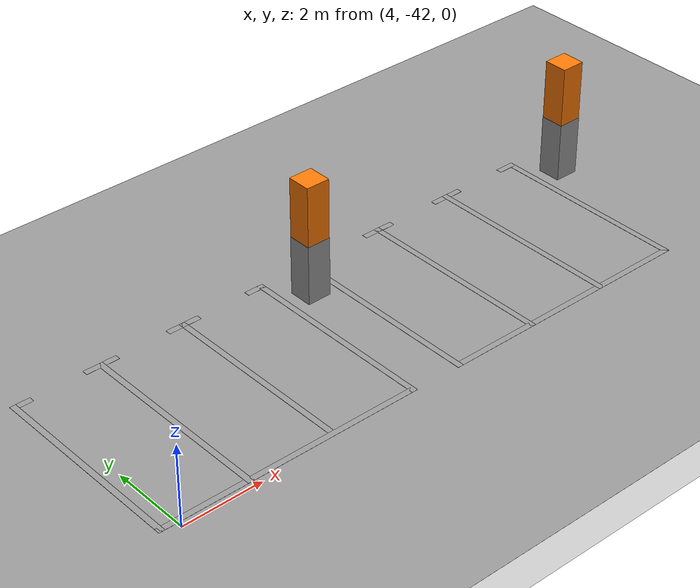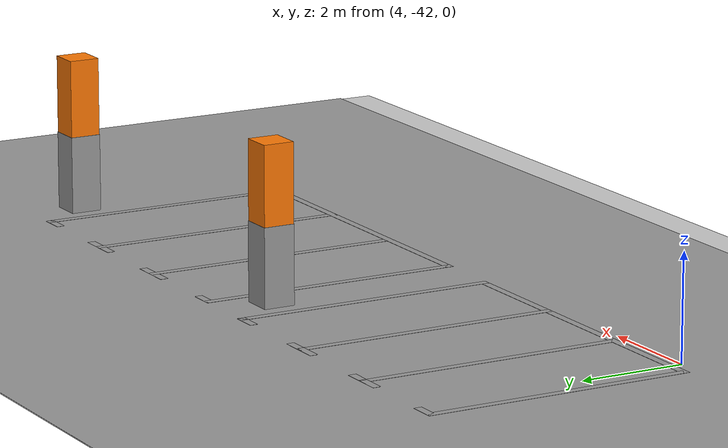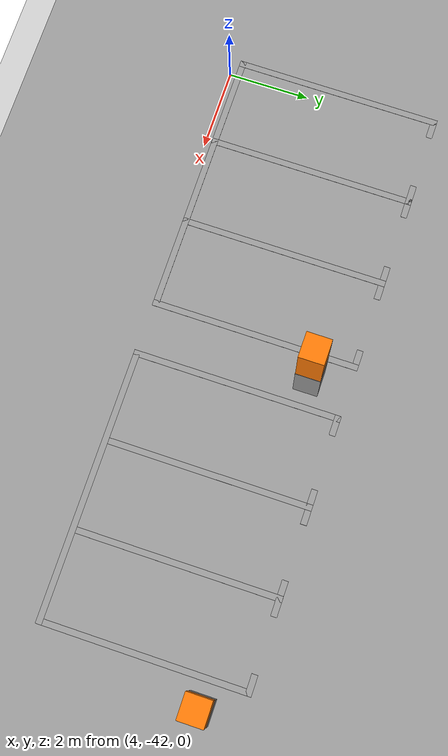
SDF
<sdf version="1.7">
 <world name="default">
  <model name="ground_plane">
   <static>1</static>
   <link name="link">
    <collision name="collision">
     <geometry><plane><normal>0 0 1</normal><size>100 100</size></plane></geometry>
     <surface><friction><ode><mu>100</mu><mu2>50</mu2></ode></friction></surface>
    </collision>
    <visual name="visual">
     <cast_shadows>0</cast_shadows>
     <geometry><plane><normal>0 0 1</normal><size>100 100</size></plane></geometry>
     <material>
      <script><uri>file://media/materials/scripts/gazebo.material</uri><name>Gazebo/Grey</name></script>
     </material>
    </visual>
   </link>
  </model>
  <model name="carport1_4_clone_3_clone_clone_4_clone">
   <pose>7.33753 -41.0492 0 0 -0 3.14141</pose>
   <link name="Wall_105">
    <collision name="Wall_105_Collision">
     <geometry><box><size>0.61 0.6 1.5</size></box></geometry>
     <pose>0 0 0.75 0 -0 0</pose>
    </collision>
    <visual name="Wall_105_Visual">
     <pose>0 0 0.75 0 -0 0</pose>
     <geometry><box><size>0.61 0.6 1.5</size></box></geometry>
     <material>
      <script><uri>file://media/materials/scripts/gazebo.material</uri><name>Gazebo/Grey</name></script>
      <ambient>1 1 1 1</ambient>
     </material>
     <meta><layer>0</layer></meta>
    </visual>
    <pose>-3.47407 -3.2865 0 0 -0 0</pose>
   </link>
   <link name="Wall_116">
    <collision name="Wall_116_Collision">
     <geometry><box><size>5.1 0.15 0.005</size></box></geometry>
     <pose>0 0 0.0025 0 -0 0</pose>
    </collision>
    <visual name="Wall_116_Visual">
     <pose>0 0 0.0025 0 -0 0</pose>
     <geometry><box><size>5.1 0.15 0.005</size></box></geometry>
     <material>
      <script><uri>file://media/materials/scripts/gazebo.material</uri><name>Gazebo/Grey</name></script>
      <ambient>1 1 1 1</ambient>
     </material>
     <meta><layer>0</layer></meta>
    </visual>
    <pose>-2.82307 -1.7385 0 0 -0 1.5708</pose>
   </link>
   <link name="Wall_124">
    <collision name="Wall_124_Collision">
     <geometry><box><size>5.1 0.15 0.005</size></box></geometry>
     <pose>0 0 0.0025 0 -0 0</pose>
    </collision>
    <visual name="Wall_124_Visual">
     <pose>0 0 0.0025 0 -0 0</pose>
     <geometry><box><size>5.1 0.15 0.005</size></box></geometry>
     <material>
      <script><uri>file://media/materials/scripts/gazebo.material</uri><name>Gazebo/Grey</name></script>
      <ambient>1 1 1 1</ambient>
     </material>
     <meta><layer>0</layer></meta>
    </visual>
    <pose>3.70393 -1.7305 0 0 -0 1.5708</pose>
   </link>
   <link name="Wall_146">
    <collision name="Wall_146_Collision">
     <geometry><box><size>6.67711 0.15 0.005</size></box></geometry>
     <pose>0 0 0.0025 0 -0 0</pose>
    </collision>
    <visual name="Wall_146_Visual">
     <pose>0 0 0.0025 0 -0 0</pose>
     <geometry><box><size>6.67711 0.15 0.005</size></box></geometry>
     <material>
      <script><uri>file://media/materials/scripts/gazebo.material</uri><name>Gazebo/Grey</name></script>
      <ambient>1 1 1 1</ambient>
     </material>
     <meta><layer>0</layer></meta>
    </visual>
    <pose>0.440428 0.7405 0 0 -0 0.001226</pose>
   </link>
   <link name="Wall_168">
    <collision name="Wall_168_Collision">
     <geometry><box><size>5.1 0.15 0.005</size></box></geometry>
     <pose>0 0 0.0025 0 -0 0</pose>
    </collision>
    <visual name="Wall_168_Visual">
     <pose>0 0 0.0025 0 -0 0</pose>
     <geometry><box><size>5.1 0.15 0.005</size></box></geometry>
     <material>
      <script><uri>file://media/materials/scripts/gazebo.material</uri><name>Gazebo/Grey</name></script>
      <ambient>1 1 1 1</ambient>
     </material>
     <meta><layer>0</layer></meta>
    </visual>
    <pose>-0.64827 -1.73839 0 0 -0 1.57088</pose>
   </link>
   <link name="Wall_173">
    <collision name="Wall_173_Collision">
     <geometry><box><size>5.1 0.15 0.005</size></box></geometry>
     <pose>0 0 0.0025 0 -0 0</pose>
    </collision>
    <visual name="Wall_173_Visual">
     <pose>0 0 0.0025 0 -0 0</pose>
     <geometry><box><size>5.1 0.15 0.005</size></box></geometry>
     <material>
      <script><uri>file://media/materials/scripts/gazebo.material</uri><name>Gazebo/Grey</name></script>
      <ambient>1 1 1 1</ambient>
     </material>
     <meta><layer>0</layer></meta>
    </visual>
    <pose>1.52673 -1.73839 0 0 -0 1.57088</pose>
   </link>
   <link name="Wall_177">
    <collision name="Wall_177_Collision">
     <geometry><box><size>0.6 0.59 3</size></box></geometry>
     <pose>0 0 1.5 0 -0 0</pose>
    </collision>
    <visual name="Wall_177_Visual">
     <pose>0 0 1.5 0 -0 0</pose>
     <geometry><box><size>0.6 0.59 3</size></box></geometry>
     <material>
      <script><uri>file://media/materials/scripts/gazebo.material</uri><name>Gazebo/Grey</name></script>
      <ambient>0.996078 0.47451 0.0196078 1</ambient>
     </material>
     <meta><layer>0</layer></meta>
    </visual>
    <pose>-3.47407 -3.2865 0 0 -0 0</pose>
   </link>
   <link name="Wall_179">
    <collision name="Wall_179_Collision">
     <geometry><box><size>0.5 0.15 0.005</size></box></geometry>
     <pose>0 0 0.0025 0 -0 0</pose>
    </collision>
    <visual name="Wall_179_Visual">
     <pose>0 0 0.0025 0 -0 0</pose>
     <geometry><box><size>0.5 0.15 0.005</size></box></geometry>
     <material>
      <script><uri>file://media/materials/scripts/gazebo.material</uri><name>Gazebo/Grey</name></script>
      <ambient>1 1 1 1</ambient>
     </material>
     <meta><layer>0</layer></meta>
    </visual>
    <pose>-2.64807 -4.2135 0 0 -0 0</pose>
   </link>
   <link name="Wall_181">
    <collision name="Wall_181_Collision">
     <geometry><box><size>0.5 0.15 0.005</size></box></geometry>
     <pose>0 0 0.0025 0 -0 0</pose>
    </collision>
    <visual name="Wall_181_Visual">
     <pose>0 0 0.0025 0 -0 0</pose>
     <geometry><box><size>0.5 0.15 0.005</size></box></geometry>
     <material>
      <script><uri>file://media/materials/scripts/gazebo.material</uri><name>Gazebo/Grey</name></script>
      <ambient>1 1 1 1</ambient>
     </material>
     <meta><layer>0</layer></meta>
    </visual>
    <pose>-0.823072 -4.2135 0 0 -0 3.14159</pose>
   </link>
   <link name="Wall_183">
    <collision name="Wall_183_Collision">
     <geometry><box><size>0.5 0.15 0.005</size></box></geometry>
     <pose>0 0 0.0025 0 -0 0</pose>
    </collision>
    <visual name="Wall_183_Visual">
     <pose>0 0 0.0025 0 -0 0</pose>
     <geometry><box><size>0.5 0.15 0.005</size></box></geometry>
     <material>
      <script><uri>file://media/materials/scripts/gazebo.material</uri><name>Gazebo/Grey</name></script>
      <ambient>1 1 1 1</ambient>
     </material>
     <meta><layer>0</layer></meta>
    </visual>
    <pose>-0.473072 -4.2135 0 0 -0 0</pose>
   </link>
   <link name="Wall_185">
    <collision name="Wall_185_Collision">
     <geometry><box><size>0.5 0.15 0.005</size></box></geometry>
     <pose>0 0 0.0025 0 -0 0</pose>
    </collision>
    <visual name="Wall_185_Visual">
     <pose>0 0 0.0025 0 -0 0</pose>
     <geometry><box><size>0.5 0.15 0.005</size></box></geometry>
     <material>
      <script><uri>file://media/materials/scripts/gazebo.material</uri><name>Gazebo/Grey</name></script>
      <ambient>1 1 1 1</ambient>
     </material>
     <meta><layer>0</layer></meta>
    </visual>
    <pose>1.35193 -4.2135 0 0 -0 3.14159</pose>
   </link>
   <link name="Wall_187">
    <collision name="Wall_187_Collision">
     <geometry><box><size>0.5 0.15 0.005</size></box></geometry>
     <pose>0 0 0.0025 0 -0 0</pose>
    </collision>
    <visual name="Wall_187_Visual">
     <pose>0 0 0.0025 0 -0 0</pose>
     <geometry><box><size>0.5 0.15 0.005</size></box></geometry>
     <material>
      <script><uri>file://media/materials/scripts/gazebo.material</uri><name>Gazebo/Grey</name></script>
      <ambient>1 1 1 1</ambient>
     </material>
     <meta><layer>0</layer></meta>
    </visual>
    <pose>1.70193 -4.2135 0 0 -0 0</pose>
   </link>
   <link name="Wall_189">
    <collision name="Wall_189_Collision">
     <geometry><box><size>0.5 0.15 0.005</size></box></geometry>
     <pose>0 0 0.0025 0 -0 0</pose>
    </collision>
    <visual name="Wall_189_Visual">
     <pose>0 0 0.0025 0 -0 0</pose>
     <geometry><box><size>0.5 0.15 0.005</size></box></geometry>
     <material>
      <script><uri>file://media/materials/scripts/gazebo.material</uri><name>Gazebo/Grey</name></script>
      <ambient>1 1 1 1</ambient>
     </material>
     <meta><layer>0</layer></meta>
    </visual>
    <pose>3.52893 -4.2055 0 0 -0 3.14159</pose>
   </link>
   <static>1</static>
  </model>
  <model name="carport1_4_clone_3_clone_clone_4_clone_0">
   <pose>15.168 -41.0599 0 0 -0 3.14141</pose>
   <link name="Wall_105">
    <collision name="Wall_105_Collision">
     <geometry><box><size>0.61 0.6 1.5</size></box></geometry>
     <pose>0 0 0.75 0 -0 0</pose>
    </collision>
    <visual name="Wall_105_Visual">
     <pose>0 0 0.75 0 -0 0</pose>
     <geometry><box><size>0.61 0.6 1.5</size></box></geometry>
     <material>
      <script><uri>file://media/materials/scripts/gazebo.material</uri><name>Gazebo/Grey</name></script>
      <ambient>1 1 1 1</ambient>
     </material>
     <meta><layer>0</layer></meta>
    </visual>
    <pose>-3.47407 -3.2865 0 0 -0 0</pose>
   </link>
   <link name="Wall_116">
    <collision name="Wall_116_Collision">
     <geometry><box><size>5.1 0.15 0.005</size></box></geometry>
     <pose>0 0 0.0025 0 -0 0</pose>
    </collision>
    <visual name="Wall_116_Visual">
     <pose>0 0 0.0025 0 -0 0</pose>
     <geometry><box><size>5.1 0.15 0.005</size></box></geometry>
     <material>
      <script><uri>file://media/materials/scripts/gazebo.material</uri><name>Gazebo/Grey</name></script>
      <ambient>1 1 1 1</ambient>
     </material>
     <meta><layer>0</layer></meta>
    </visual>
    <pose>-2.82307 -1.7385 0 0 -0 1.5708</pose>
   </link>
   <link name="Wall_124">
    <collision name="Wall_124_Collision">
     <geometry><box><size>5.1 0.15 0.005</size></box></geometry>
     <pose>0 0 0.0025 0 -0 0</pose>
    </collision>
    <visual name="Wall_124_Visual">
     <pose>0 0 0.0025 0 -0 0</pose>
     <geometry><box><size>5.1 0.15 0.005</size></box></geometry>
     <material>
      <script><uri>file://media/materials/scripts/gazebo.material</uri><name>Gazebo/Grey</name></script>
      <ambient>1 1 1 1</ambient>
     </material>
     <meta><layer>0</layer></meta>
    </visual>
    <pose>3.70393 -1.7305 0 0 -0 1.5708</pose>
   </link>
   <link name="Wall_146">
    <collision name="Wall_146_Collision">
     <geometry><box><size>6.67711 0.15 0.005</size></box></geometry>
     <pose>0 0 0.0025 0 -0 0</pose>
    </collision>
    <visual name="Wall_146_Visual">
     <pose>0 0 0.0025 0 -0 0</pose>
     <geometry><box><size>6.67711 0.15 0.005</size></box></geometry>
     <material>
      <script><uri>file://media/materials/scripts/gazebo.material</uri><name>Gazebo/Grey</name></script>
      <ambient>1 1 1 1</ambient>
     </material>
     <meta><layer>0</layer></meta>
    </visual>
    <pose>0.440428 0.7405 0 0 -0 0.001226</pose>
   </link>
   <link name="Wall_168">
    <collision name="Wall_168_Collision">
     <geometry><box><size>5.1 0.15 0.005</size></box></geometry>
     <pose>0 0 0.0025 0 -0 0</pose>
    </collision>
    <visual name="Wall_168_Visual">
     <pose>0 0 0.0025 0 -0 0</pose>
     <geometry><box><size>5.1 0.15 0.005</size></box></geometry>
     <material>
      <script><uri>file://media/materials/scripts/gazebo.material</uri><name>Gazebo/Grey</name></script>
      <ambient>1 1 1 1</ambient>
     </material>
     <meta><layer>0</layer></meta>
    </visual>
    <pose>-0.64827 -1.73839 0 0 -0 1.57088</pose>
   </link>
   <link name="Wall_173">
    <collision name="Wall_173_Collision">
     <geometry><box><size>5.1 0.15 0.005</size></box></geometry>
     <pose>0 0 0.0025 0 -0 0</pose>
    </collision>
    <visual name="Wall_173_Visual">
     <pose>0 0 0.0025 0 -0 0</pose>
     <geometry><box><size>5.1 0.15 0.005</size></box></geometry>
     <material>
      <script><uri>file://media/materials/scripts/gazebo.material</uri><name>Gazebo/Grey</name></script>
      <ambient>1 1 1 1</ambient>
     </material>
     <meta><layer>0</layer></meta>
    </visual>
    <pose>1.52673 -1.73839 0 0 -0 1.57088</pose>
   </link>
   <link name="Wall_177">
    <collision name="Wall_177_Collision">
     <geometry><box><size>0.6 0.59 3</size></box></geometry>
     <pose>0 0 1.5 0 -0 0</pose>
    </collision>
    <visual name="Wall_177_Visual">
     <pose>0 0 1.5 0 -0 0</pose>
     <geometry><box><size>0.6 0.59 3</size></box></geometry>
     <material>
      <script><uri>file://media/materials/scripts/gazebo.material</uri><name>Gazebo/Grey</name></script>
      <ambient>0.996078 0.47451 0.0196078 1</ambient>
     </material>
     <meta><layer>0</layer></meta>
    </visual>
    <pose>-3.47407 -3.2865 0 0 -0 0</pose>
   </link>
   <link name="Wall_179">
    <collision name="Wall_179_Collision">
     <geometry><box><size>0.5 0.15 0.005</size></box></geometry>
     <pose>0 0 0.0025 0 -0 0</pose>
    </collision>
    <visual name="Wall_179_Visual">
     <pose>0 0 0.0025 0 -0 0</pose>
     <geometry><box><size>0.5 0.15 0.005</size></box></geometry>
     <material>
      <script><uri>file://media/materials/scripts/gazebo.material</uri><name>Gazebo/Grey</name></script>
      <ambient>1 1 1 1</ambient>
     </material>
     <meta><layer>0</layer></meta>
    </visual>
    <pose>-2.64807 -4.2135 0 0 -0 0</pose>
   </link>
   <link name="Wall_181">
    <collision name="Wall_181_Collision">
     <geometry><box><size>0.5 0.15 0.005</size></box></geometry>
     <pose>0 0 0.0025 0 -0 0</pose>
    </collision>
    <visual name="Wall_181_Visual">
     <pose>0 0 0.0025 0 -0 0</pose>
     <geometry><box><size>0.5 0.15 0.005</size></box></geometry>
     <material>
      <script><uri>file://media/materials/scripts/gazebo.material</uri><name>Gazebo/Grey</name></script>
      <ambient>1 1 1 1</ambient>
     </material>
     <meta><layer>0</layer></meta>
    </visual>
    <pose>-0.823072 -4.2135 0 0 -0 3.14159</pose>
   </link>
   <link name="Wall_183">
    <collision name="Wall_183_Collision">
     <geometry><box><size>0.5 0.15 0.005</size></box></geometry>
     <pose>0 0 0.0025 0 -0 0</pose>
    </collision>
    <visual name="Wall_183_Visual">
     <pose>0 0 0.0025 0 -0 0</pose>
     <geometry><box><size>0.5 0.15 0.005</size></box></geometry>
     <material>
      <script><uri>file://media/materials/scripts/gazebo.material</uri><name>Gazebo/Grey</name></script>
      <ambient>1 1 1 1</ambient>
     </material>
     <meta><layer>0</layer></meta>
    </visual>
    <pose>-0.473072 -4.2135 0 0 -0 0</pose>
   </link>
   <link name="Wall_185">
    <collision name="Wall_185_Collision">
     <geometry><box><size>0.5 0.15 0.005</size></box></geometry>
     <pose>0 0 0.0025 0 -0 0</pose>
    </collision>
    <visual name="Wall_185_Visual">
     <pose>0 0 0.0025 0 -0 0</pose>
     <geometry><box><size>0.5 0.15 0.005</size></box></geometry>
     <material>
      <script><uri>file://media/materials/scripts/gazebo.material</uri><name>Gazebo/Grey</name></script>
      <ambient>1 1 1 1</ambient>
     </material>
     <meta><layer>0</layer></meta>
    </visual>
    <pose>1.35193 -4.2135 0 0 -0 3.14159</pose>
   </link>
   <link name="Wall_187">
    <collision name="Wall_187_Collision">
     <geometry><box><size>0.5 0.15 0.005</size></box></geometry>
     <pose>0 0 0.0025 0 -0 0</pose>
    </collision>
    <visual name="Wall_187_Visual">
     <pose>0 0 0.0025 0 -0 0</pose>
     <geometry><box><size>0.5 0.15 0.005</size></box></geometry>
     <material>
      <script><uri>file://media/materials/scripts/gazebo.material</uri><name>Gazebo/Grey</name></script>
      <ambient>1 1 1 1</ambient>
     </material>
     <meta><layer>0</layer></meta>
    </visual>
    <pose>1.70193 -4.2135 0 0 -0 0</pose>
   </link>
   <link name="Wall_189">
    <collision name="Wall_189_Collision">
     <geometry><box><size>0.5 0.15 0.005</size></box></geometry>
     <pose>0 0 0.0025 0 -0 0</pose>
    </collision>
    <visual name="Wall_189_Visual">
     <pose>0 0 0.0025 0 -0 0</pose>
     <geometry><box><size>0.5 0.15 0.005</size></box></geometry>
     <material>
      <script><uri>file://media/materials/scripts/gazebo.material</uri><name>Gazebo/Grey</name></script>
      <ambient>1 1 1 1</ambient>
     </material>
     <meta><layer>0</layer></meta>
    </visual>
    <pose>3.52893 -4.2055 0 0 -0 3.14159</pose>
   </link>
   <static>1</static>
  </model>
  <model name="ground_gray_150*60">
   <pose>9.80551 -16.8225 0 0 -0 0</pose>
   <link name="Wall_8">
    <collision name="Wall_8_Collision">
     <geometry><box><size>150 60 0.002</size></box></geometry>
     <pose>0 0 0.001 0 -0 0</pose>
    </collision>
    <visual name="Wall_8_Visual">
     <pose>0 0 0.001 0 -0 0</pose>
     <geometry><box><size>150 60 0.002</size></box></geometry>
     <material>
      <script><uri>file://media/materials/scripts/gazebo.material</uri><name>Gazebo/Grey</name></script>
      <ambient>0.180392 0.203922 0.211765 1</ambient>
     </material>
     <meta><layer>0</layer></meta>
    </visual>
    <pose>2e-06 0 0 0 -0 0</pose>
   </link>
   <static>1</static>
  </model>
 </world>
</sdf>
